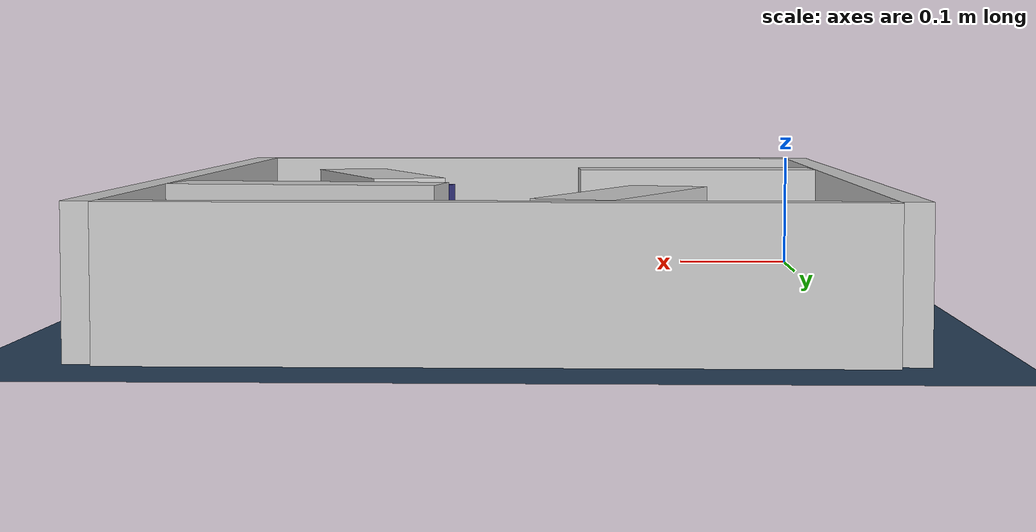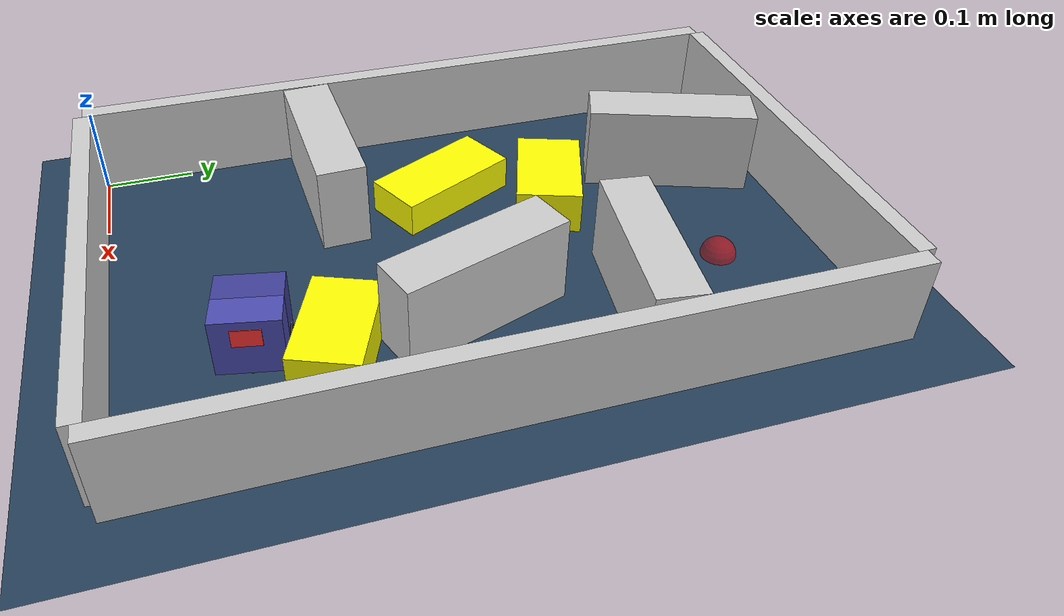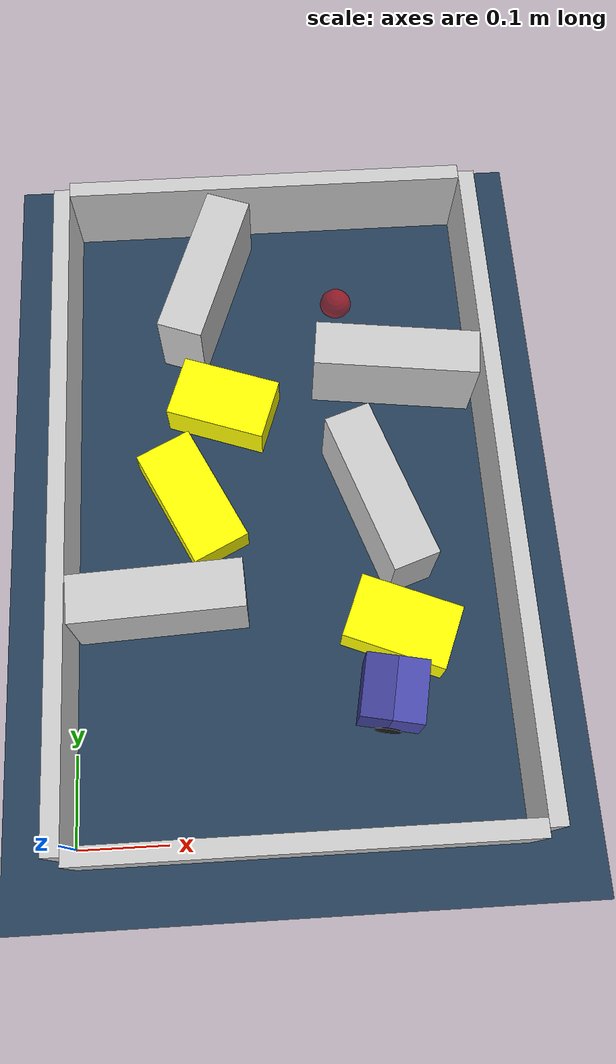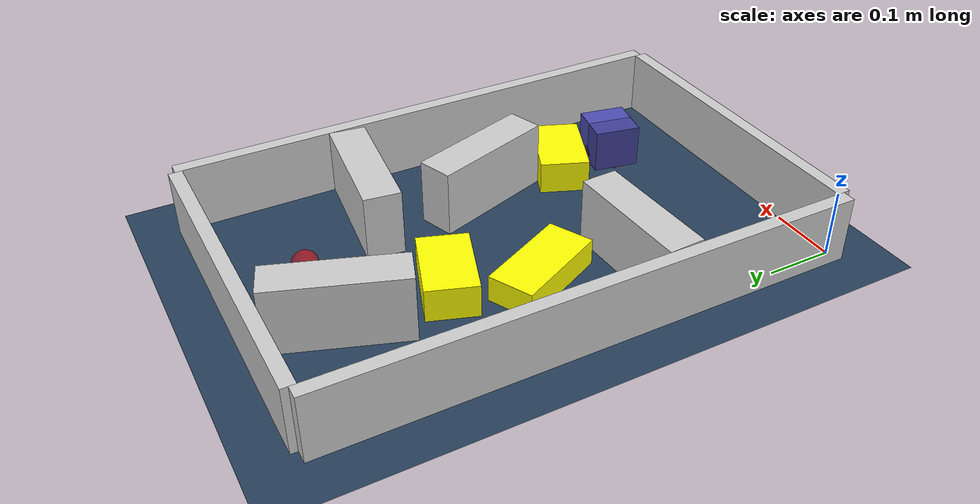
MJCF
<?xml version='1.0' encoding='utf-8'?>
<mujoco model="real_buildable">
  <compiler angle="degree" />
  <option timestep="0.002" integrator="implicitfast" iterations="100" cone="elliptic" />
  <default>
    <geom density="1" />
  </default>
  <asset>
    <texture builtin="gradient" height="3072" rgb1="0.3 0.5 0.7" rgb2="0 0 0" type="skybox" width="512" />
    <texture builtin="checker" height="300" mark="edge" markrgb="0.8 0.8 0.8" name="groundplane" rgb1="0.2 0.3 0.4" rgb2="0.1 0.2 0.3" type="2d" width="300" />
    <material name="groundplane" reflectance="0.2" texrepeat="5 5" texture="groundplane" texuniform="true" />
  </asset>
  <worldbody>
    <light dir="0 0 -1" directional="true" pos="0 0 1.5" />
    <geom name="floor" type="plane" condim="4" friction="0.5 0.005 0.001" material="groundplane" size="0 0 0.05" />
    <body name="walls">
      <geom name="wall_boundary_left" type="box" condim="4" friction="1.0 0.005 0.0001" rgba="0.8 0.8 0.8 1" pos="-0.010000 0.387500 0.050000" euler="0 0 0.000000" size="0.010000 0.397500 0.050000" />
      <geom name="wall_boundary_right" type="box" condim="4" friction="1.0 0.005 0.0001" rgba="0.8 0.8 0.8 1" pos="0.500000 0.387500 0.050000" euler="0 0 0.000000" size="0.010000 0.397500 0.050000" />
      <geom name="wall_boundary_bottom" type="box" condim="4" friction="1.0 0.005 0.0001" rgba="0.8 0.8 0.8 1" pos="0.245000 -0.010000 0.050000" euler="0 0 0.000000" size="0.245000 0.010000 0.050000" />
      <geom name="wall_boundary_top" type="box" condim="4" friction="1.0 0.005 0.0001" rgba="0.8 0.8 0.8 1" pos="0.245000 0.785000 0.050000" euler="0 0 0.000000" size="0.245000 0.010000 0.050000" />
      <geom name="wall_inner_1" type="box" condim="4" friction="1.0 0.005 0.0001" rgba="0.8 0.8 0.8 1" pos="0.099000 0.258000 0.050000" euler="0 0 2.700000" size="0.097500 0.027500 0.050000" />
      <geom name="wall_inner_2" type="box" condim="4" friction="1.0 0.005 0.0001" rgba="0.8 0.8 0.8 1" pos="0.355000 0.367000 0.050000" euler="0 0 109.000000" size="0.097500 0.027500 0.050000" />
      <geom name="wall_inner_3" type="box" condim="4" friction="1.0 0.005 0.0001" rgba="0.8 0.8 0.8 1" pos="0.389853 0.539346 0.050000" euler="0 0 -7.081968" size="0.097500 0.027500 0.050000" />
      <geom name="wall_inner_4" type="box" condim="4" friction="1.0 0.005 0.0001" rgba="0.8 0.8 0.8 1" pos="0.165224 0.668864 0.050000" euler="0 0 70.116952" size="0.097500 0.027500 0.050000" />
    </body>
    <body name="car" pos="0.35181242049923528 0.14163718393234384 0.01" quat="0.99547626867110384 0 0 -0.095010517905421032">
      <freejoint name="car_freejoint" />
      <inertial pos="0 0 0.0375" mass="0.35" diaginertia="0.000266 0.000266 0.000286" />
      <geom name="front_chassis_collision" type="box" pos="0.0175 0 0.0375" size="0.0175 0.035 0.0325" rgba="0.3 0.3 0.7 1" />
      <geom name="rear_chassis_collision" type="box" pos="-0.0175 0 0.0375" size="0.0175 0.035 0.0325" rgba="0.25 0.25 0.6 1" />
      <geom name="front_marker" type="box" pos="0.034 0 0.0505" size="0.002 0.015 0.01" rgba="1 0.2 0.2 1" contype="0" conaffinity="0" />
      <body name="rear_support_body" pos="-0.03 0 0.0025">
        <joint name="rear_caster_joint" type="ball" damping="0.0001" />
        <inertial pos="0 0 0" mass="0.025" diaginertia="0.000001 0.000001 0.000001" />
        <geom name="rear_support" type="sphere" pos="0 0 0" size="0.0025" friction="0 0 0" rgba="0.7 0.1 0.1 1" />
      </body>
      <body name="front_support_body" pos="0.03 0 0.0025">
        <joint name="front_caster_joint" type="ball" damping="0.0001" />
        <inertial pos="0 0 0" mass="0.025" diaginertia="0.000001 0.000001 0.000001" />
        <geom name="front_support" type="sphere" pos="0 0 0" size="0.0025" friction="0 0 0" rgba="0.1 0.7 0.1 1" />
      </body>
      <body name="left_wheel" pos="0 0.0375 0.015">
        <inertial pos="0 0 0" mass="0.05" diaginertia="0.000003 0.000006 0.000003" />
        <joint name="left_wheel_joint" type="hinge" axis="0 1 0" damping="0.01" armature="0.0001" />
        <geom name="left_wheel_collision" type="cylinder" size="0.015 0.0005" euler="90 0 0" rgba="0.1 0.1 0.1 1" />
      </body>
      <body name="right_wheel" pos="0 -0.0375 0.015">
        <inertial pos="0 0 0" mass="0.05" diaginertia="0.000003 0.000006 0.000003" />
        <joint name="right_wheel_joint" type="hinge" axis="0 1 0" damping="0.01" armature="0.0001" />
        <geom name="right_wheel_collision" type="cylinder" size="0.015 0.0005" euler="90 0 0" rgba="0.1 0.1 0.1 1" />
      </body>
    </body>
    <body name="obstacle_0_movable">
      <geom name="obstacle_0_movable" condim="4" pos="0.37106973015359845 0.22102004501674266 0.025000000000000001" friction="1 0.005 0.0001" rgba="1 1 0 1" size="0.037500 0.060000 0.025000" type="box" mass="0.1" quat="0.83002306511559854 0 0 0.55772906628228269" />
      <joint type="free" />
    </body>
    <body name="obstacle_1_movable">
      <geom name="obstacle_1_movable" condim="4" pos="0.17976599999999998 0.50999999999999968 0.025000000000000001" friction="1 0.005 0.0001" rgba="1 1 0 1" size="0.037500 0.060000 0.025000" type="box" mass="0.1" quat="0.81563436669464739 0 0 0.57856769687446385" />
      <joint type="free" />
    </body>
    <body name="obstacle_2_movable">
      <geom name="obstacle_2_movable" condim="4" pos="0.13737999999999975 0.38896699999999979 0.02" friction="1 0.005 0.0001" rgba="1 1 0 1" size="0.035000 0.075000 0.020000" type="box" mass="0.1" quat="0.97376858721251314 0 0 0.22754063056550189" />
      <joint type="free" />
    </body>
    <site name="goal" type="sphere" pos="0.330000 0.660000 0.0" size="0.02" rgba="1 0 0 0.5" />
  </worldbody>
  <actuator>
    <velocity name="left_wheel_drive" joint="left_wheel_joint" ctrlrange="-25 25" kv="0.75" forcerange="-0.5 0.5" />
    <velocity name="right_wheel_drive" joint="right_wheel_joint" ctrlrange="-25 25" kv="0.75" forcerange="-0.5 0.5" />
  </actuator>
</mujoco>
